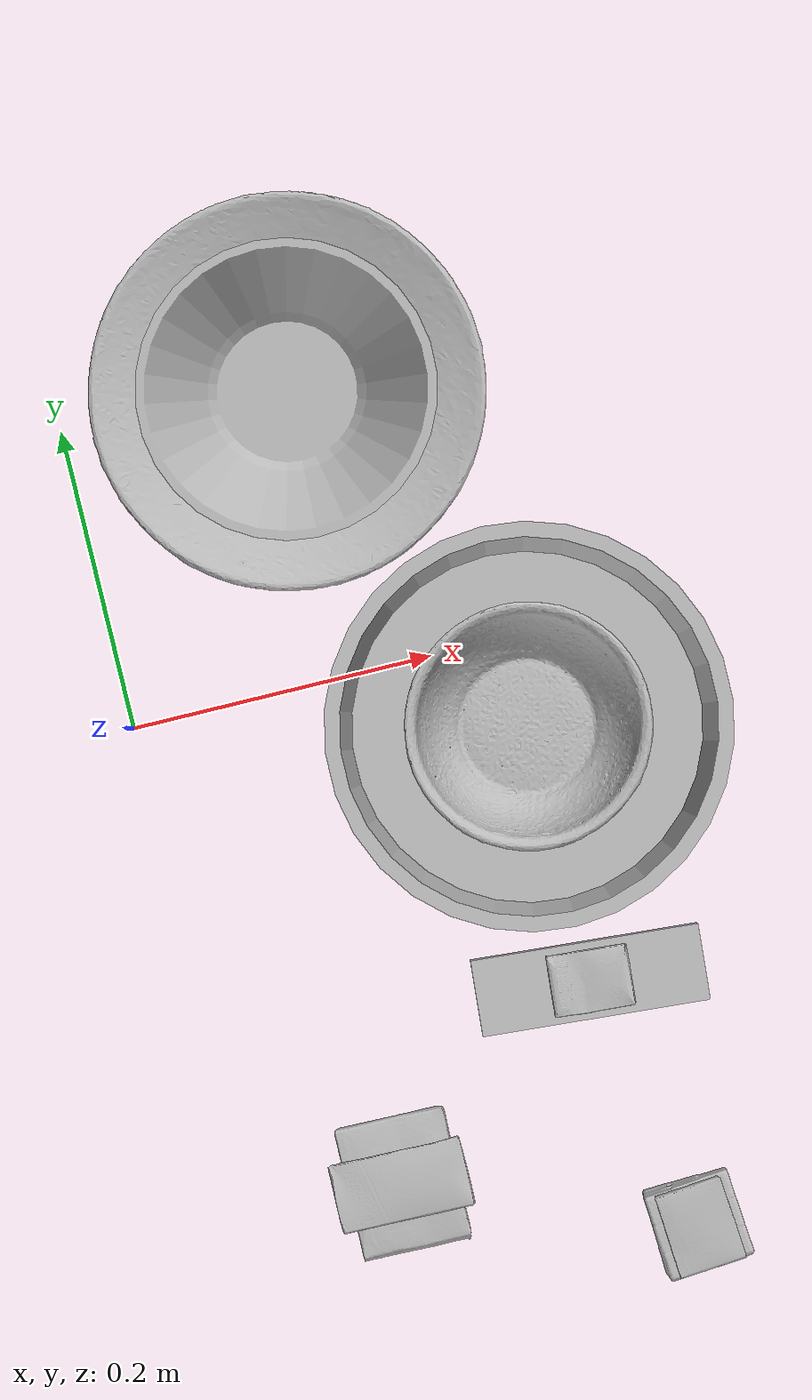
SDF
<?xml version="1.0" ?>
<sdf version="1.4">
  <world name="default">
    <light name="light1" type="point">
      <pose>0 0 1 0 0 0</pose>
      <diffuse>3 3 3 1</diffuse>
      <specular>3 3 3 1</specular>
    </light>
    <light name="light2" type="point">
      <pose>0 0.5 2 0 0 0</pose>
      <diffuse>1 1 1 1</diffuse>
      <specular>1 1 1 1</specular>
    </light>
    <light name="light3" type="point">
      <pose>0 0.5 2 0 0 0</pose>
      <diffuse>3 3 3 1</diffuse>
      <specular>3 3 3 1</specular>
    </light>
    <scene>
      <ambient>0.7 0.7 0.7</ambient>
    </scene>
    <model name="box1">
      <link name="link_box1">
        <collision name="default">
          <geometry>
            <mesh>
              <uri>model://jenga/collision_meshes/collision.obj</uri>
              <scale>1.0 1.0 1.0</scale>
            </mesh>
          </geometry>
          <surface>
            <friction>
              <ode>
                <mu>0.5</mu>
                <mu2>0.5</mu2>
              </ode>
            </friction>
          </surface>
        </collision>
        <visual name="default">
          <geometry>
            <mesh>
              <uri>model://jenga/visual_meshes/visual.dae</uri>
              <scale>1.0 1.0 1.0</scale>
            </mesh>
          </geometry>
        </visual>
        <inertial>
          <mass>0.2830650806427002</mass>
          <pose>-2.502855807051674e-07 -0.00010250010382151231 -4.0923401684267446e-05 0.0 -7.34215461761844e-07 0.0</pose>
          <inertia>
            <ixx>7.833097e-05</ixx>
            <iyy>0.0005307686</iyy>
            <izz>0.0005666406</izz>
            <ixy>0</ixy>
            <ixz>0</ixz>
            <iyz>0</iyz>
          </inertia>
        </inertial>
      </link>
      <pose>0.2500084638595581 -0.22989784181118011 0.014999998733401299 1.90911965031885e-07 2.3178629942271605e-09 -0.07756676380751441</pose>
    </model>
    <model name="box11">
      <link name="link_box11">
        <collision name="default">
          <geometry>
            <mesh>
              <uri>model://cracker_box/collision_meshes/collision.obj</uri>
              <scale>0.25 0.25 0.25</scale>
            </mesh>
          </geometry>
          <surface>
            <friction>
              <ode>
                <mu>0.5</mu>
                <mu2>0.5</mu2>
              </ode>
            </friction>
          </surface>
        </collision>
        <visual name="default">
          <geometry>
            <mesh>
              <uri>model://cracker_box/visual_meshes/visual.dae</uri>
              <scale>0.25 0.25 0.25</scale>
            </mesh>
          </geometry>
        </visual>
        <inertial>
          <mass>0.04137800261378288</mass>
          <pose>0.00023660347505938262 6.358561950037256e-05 -0.0004257383698131889 -0.00031620748486547713 -0.011106488669102847 0.002546795699546287</pose>
          <inertia>
            <ixx>6.577948e-06</ixx>
            <iyy>1.0861484e-05</iyy>
            <izz>1.5500336e-05</izz>
            <ixy>0</ixy>
            <ixz>0</ixz>
            <iyz>0</iyz>
          </inertia>
        </inertial>
      </link>
      <pose>0.2499452531337738 -0.2298453003168106 0.03912043571472168 -0.011786432899739572 -0.007366357177185979 -0.0774378371563946</pose>
    </model>
    <model name="box2">
      <link name="link_box2">
        <collision name="default">
          <geometry>
            <mesh>
              <uri>model://gelatin_box/collision_meshes/collision.obj</uri>
              <scale>1.0 1.0 1.0</scale>
            </mesh>
          </geometry>
          <surface>
            <friction>
              <ode>
                <mu>0.5</mu>
                <mu2>0.5</mu2>
              </ode>
            </friction>
          </surface>
        </collision>
        <visual name="default">
          <geometry>
            <mesh>
              <uri>model://gelatin_box/visual_meshes/visual.dae</uri>
              <scale>1.0 1.0 1.0</scale>
            </mesh>
          </geometry>
        </visual>
        <inertial>
          <mass>0.22900472581386566</mass>
          <pose>0.000431961816502735 0.00011156871914863586 -0.0003640321083366871 -0.001050372089182411 -0.004755818223717792 0.016440559471606643</pose>
          <inertia>
            <ixx>0.00016165864</ixx>
            <iyy>0.00011547193</iyy>
            <izz>0.00024608054</izz>
            <ixy>0</ixy>
            <ixz>0</ixz>
            <iyz>0</iyz>
          </inertia>
        </inertial>
      </link>
      <pose>0.09993064403533936 -0.3300665020942688 0.015168314799666405 0.00559845084029475 -0.0073052936452867355 -0.02495597801913382</pose>
    </model>
    <model name="box21">
      <link name="link_box21">
        <collision name="default">
          <geometry>
            <mesh>
              <uri>model://sugar_box/collision_meshes/collision.obj</uri>
              <scale>0.5 0.5 0.5</scale>
            </mesh>
          </geometry>
          <surface>
            <friction>
              <ode>
                <mu>0.5</mu>
                <mu2>0.5</mu2>
              </ode>
            </friction>
          </surface>
        </collision>
        <visual name="default">
          <geometry>
            <mesh>
              <uri>model://sugar_box/visual_meshes/visual.dae</uri>
              <scale>0.5 0.5 0.5</scale>
            </mesh>
          </geometry>
        </visual>
        <inertial>
          <mass>0.12271630764007568</mass>
          <pose>0.0005171863595023751 1.924554817378521e-05 -0.00018182404164690524 -0.00040462595111886014 0.0010506636380741379 0.0026153785562511135</pose>
          <inertia>
            <ixx>2.5561721e-05</ixx>
            <iyy>8.262075e-05</iyy>
            <izz>9.890688e-05</izz>
            <ixy>0</ixy>
            <ixz>0</ixz>
            <iyz>0</iyz>
          </inertia>
        </inertial>
      </link>
      <pose>0.09894067794084549 -0.32946306467056274 0.04110291600227356 -0.030532558690506063 -0.0460889876495581 -0.01893560608823024</pose>
    </model>
    <model name="box3">
      <link name="link_box3">
        <collision name="default">
          <geometry>
            <mesh>
              <uri>model://rubiks_cube/collision_meshes/collision.obj</uri>
              <scale>1.0 1.0 1.0</scale>
            </mesh>
          </geometry>
          <surface>
            <friction>
              <ode>
                <mu>0.5</mu>
                <mu2>0.5</mu2>
              </ode>
            </friction>
          </surface>
        </collision>
        <visual name="default">
          <geometry>
            <mesh>
              <uri>model://rubiks_cube/visual_meshes/visual.dae</uri>
              <scale>1.0 1.0 1.0</scale>
            </mesh>
          </geometry>
        </visual>
        <inertial>
          <mass>0.16665811836719513</mass>
          <pose>2.6721039830590598e-05 5.256966323941015e-05 -7.264316082000732e-06 -0.05467166844566422 -0.0981397083583286 -0.034457090447706985</pose>
          <inertia>
            <ixx>9.20898e-05</ixx>
            <iyy>9.166034e-05</iyy>
            <izz>9.285292e-05</izz>
            <ixy>0</ixy>
            <ixz>0</ixz>
            <iyz>0</iyz>
          </inertia>
        </inertial>
      </link>
      <pose>0.2799491882324219 -0.40023207664489746 0.028679002076387405 -2.3633761573555247e-07 3.272283348196489e-07 0.07713748020696223</pose>
    </model>
    <model name="box31">
      <link name="link_box31">
        <collision name="default">
          <geometry>
            <mesh>
              <uri>model://pudding_box/collision_meshes/collision.obj</uri>
              <scale>0.5 0.5 0.5</scale>
            </mesh>
          </geometry>
          <surface>
            <friction>
              <ode>
                <mu>0.5</mu>
                <mu2>0.5</mu2>
              </ode>
            </friction>
          </surface>
        </collision>
        <visual name="default">
          <geometry>
            <mesh>
              <uri>model://pudding_box/visual_meshes/visual.dae</uri>
              <scale>0.5 0.5 0.5</scale>
            </mesh>
          </geometry>
        </visual>
        <inertial>
          <mass>0.023591291159391403</mass>
          <pose>0.00024474109522998333 0.00040339428232982755 -0.0002594413817860186 0.00521310040348307 -0.006603797312523218 0.020079827030686108</pose>
          <inertia>
            <ixx>6.667184e-06</ixx>
            <iyy>4.4857293e-06</iyy>
            <izz>9.845841e-06</izz>
            <ixy>0</ixy>
            <ixz>0</ixz>
            <iyz>0</iyz>
          </inertia>
        </inertial>
      </link>
      <pose>0.27991801500320435 -0.4002549648284912 0.06752665340900421 0.025519883884398395 0.0036038302899050424 0.07701272542679656</pose>
    </model>
    <model name="plate1">
      <link name="link_plate1">
        <collision name="default">
          <geometry>
            <mesh>
              <uri>model://plate/collision_meshes/collision.obj</uri>
              <scale>1.0 1.0 1.0</scale>
            </mesh>
          </geometry>
          <surface>
            <friction>
              <ode>
                <mu>0.5</mu>
                <mu2>0.5</mu2>
              </ode>
            </friction>
          </surface>
        </collision>
        <visual name="default">
          <geometry>
            <mesh>
              <uri>model://plate/visual_meshes/visual.dae</uri>
              <scale>1.0 1.0 1.0</scale>
            </mesh>
          </geometry>
        </visual>
        <inertial>
          <mass>0.2114637792110443</mass>
          <pose>-0.0006044656038284302 0.0002782588708214462 -0.0010561993112787604 0.002218744002621918 -0.003225513006599694 0.45262307488796183</pose>
          <inertia>
            <ixx>0.0009892316</ixx>
            <iyy>0.0009797702</iyy>
            <izz>0.0019347895</izz>
            <ixy>0</ixy>
            <ixz>0</ixz>
            <iyz>0</iyz>
          </inertia>
        </inertial>
      </link>
      <pose>0.15000000596046448 0.1900000274181366 0.01373298093676567 2.532708993970764e-07 1.571708626017315e-07 0.08188044934487491</pose>
    </model>
    <model name="bowl1">
      <link name="link_bowl1">
        <collision name="default">
          <geometry>
            <mesh>
              <uri>model://bowl_a/collision_meshes/collision.obj</uri>
              <scale>1.0 1.0 1.0</scale>
            </mesh>
          </geometry>
          <surface>
            <friction>
              <ode>
                <mu>0.5</mu>
                <mu2>0.5</mu2>
              </ode>
            </friction>
          </surface>
        </collision>
        <visual name="default">
          <geometry>
            <mesh>
              <uri>model://bowl_a/visual_meshes/visual.dae</uri>
              <scale>1.0 1.0 1.0</scale>
            </mesh>
          </geometry>
        </visual>
        <inertial>
          <mass>0.48499906063079834</mass>
          <pose>0.00027867438620887697 4.731262743007392e-05 -0.0013765298062935472 -0.0009805334386135593 -0.0010938262367740986 -0.19123808511586568</pose>
          <inertia>
            <ixx>0.0013808149</ixx>
            <iyy>0.0013892918</iyy>
            <izz>0.0024558324</izz>
            <ixy>0</ixy>
            <ixz>0</ixz>
            <iyz>0</iyz>
          </inertia>
        </inertial>
      </link>
      <pose>0.14998731017112732 0.1896083652973175 0.03478654846549034 0.012756792513379285 0.001538649440934223 -0.13275099842512983</pose>
    </model>
    <model name="plate2">
      <link name="link_plate2">
        <collision name="default">
          <geometry>
            <mesh>
              <uri>model://pan_tefal/collision_meshes/collision.obj</uri>
              <scale>1.0 1.0 1.0</scale>
            </mesh>
          </geometry>
          <surface>
            <friction>
              <ode>
                <mu>0.5</mu>
                <mu2>0.5</mu2>
              </ode>
            </friction>
          </surface>
        </collision>
        <visual name="default">
          <geometry>
            <mesh>
              <uri>model://pan_tefal/visual_meshes/visual.dae</uri>
              <scale>1.0 1.0 1.0</scale>
            </mesh>
          </geometry>
        </visual>
        <inertial>
          <mass>1.510846495628357</mass>
          <pose>-0.00018002149590756744 3.279069278505631e-05 -0.008514934219419956 0.0008190286460061649 -0.00033014112223844094 -0.3318560039733936</pose>
          <inertia>
            <ixx>0.010429303</ixx>
            <iyy>0.010496541</iyy>
            <izz>0.01919834</izz>
            <ixy>0</ixy>
            <ixz>0</ixz>
            <iyz>0</iyz>
          </inertia>
        </inertial>
      </link>
      <pose>0.24999995529651642 -0.06000000983476639 0.03805001080036163 -2.574027262582383e-08 -2.254194343047727e-08 0.09935966162433368</pose>
    </model>
    <model name="bowl2">
      <link name="link_bowl2">
        <collision name="default">
          <geometry>
            <mesh>
              <uri>model://bowl/collision_meshes/collision.obj</uri>
              <scale>1.0 1.0 1.0</scale>
            </mesh>
          </geometry>
          <surface>
            <friction>
              <ode>
                <mu>0.5</mu>
                <mu2>0.5</mu2>
              </ode>
            </friction>
          </surface>
        </collision>
        <visual name="default">
          <geometry>
            <mesh>
              <uri>model://bowl/visual_meshes/visual.dae</uri>
              <scale>1.0 1.0 1.0</scale>
            </mesh>
          </geometry>
        </visual>
        <inertial>
          <mass>0.12714597582817078</mass>
          <pose>0.0002044505235971883 -0.0010302012087777257 -0.0008042659610509872 -0.015764101160635133 0.01454679544325816 0.7140405339594252</pose>
          <inertia>
            <ixx>0.0002920644</ixx>
            <iyy>0.00028553858</iyy>
            <izz>0.0004913528</izz>
            <ixy>0</ixy>
            <ixz>0</ixz>
            <iyz>0</iyz>
          </inertia>
        </inertial>
      </link>
      <pose>0.24997030198574066 -0.05995957553386688 0.03551652655005455 -0.0016054103950115897 -0.0008921682029460879 0.12878796069387502</pose>
    </model>
  </world>
</sdf>
